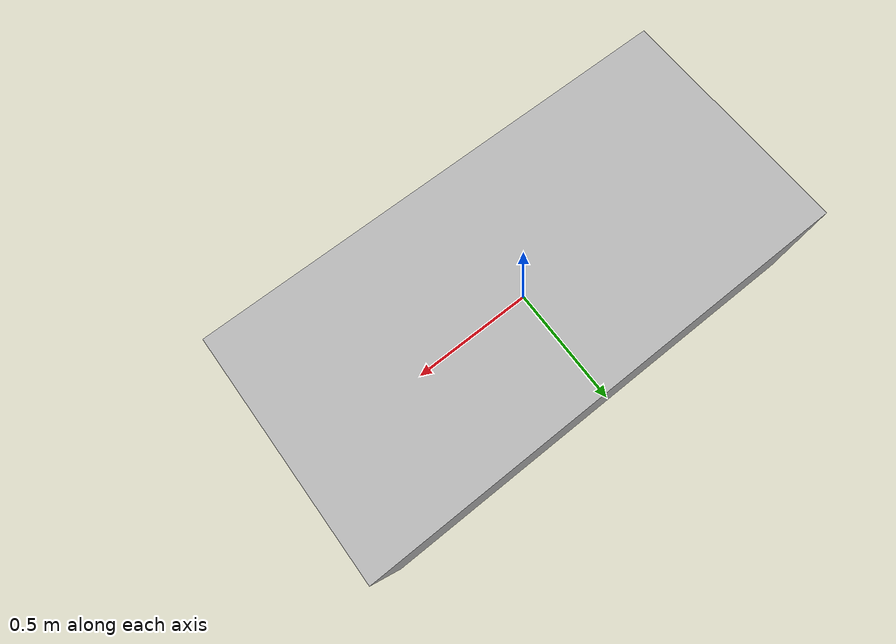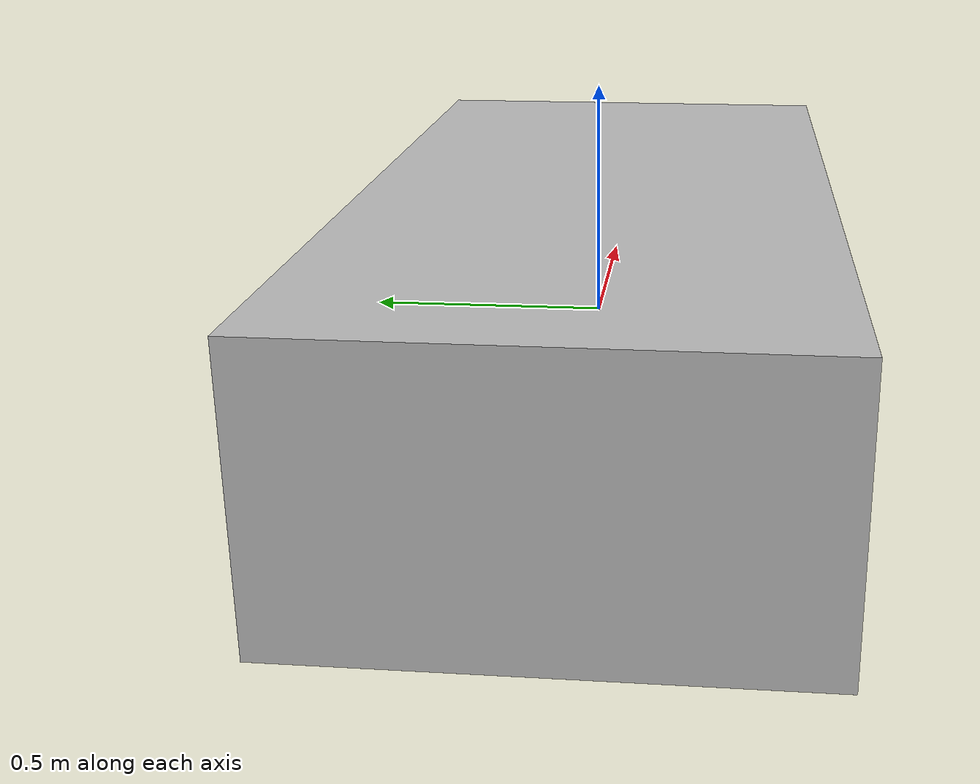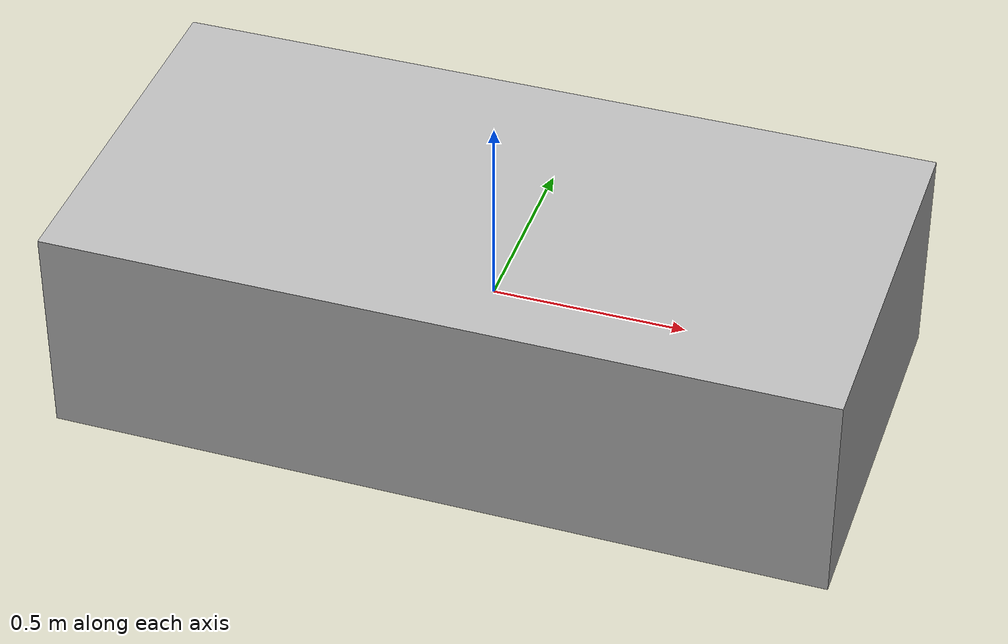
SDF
<?xml version="1.0" ?>
<sdf version="1.6">
  <world name="model_plugin_only">
    <plugin
      filename="gz-sim-apply-link-wrench-system"
      name="gz::sim::systems::ApplyLinkWrench">
    </plugin>

    <light type="directional" name="sun">
    </light>

    <model name='box'>
      <link name='link'>
        <inertial>
          <mass>1.14395</mass>
          <inertia>
            <ixx>0.126164</ixx>
            <iyy>0.416519</iyy>
            <izz>0.481014</izz>
          </inertia>
        </inertial>
        <visual name='visual'>
          <geometry>
            <box>
              <size>2.01142 1 0.568726</size>
            </box>
          </geometry>
        </visual>
        <collision name='collision'>
          <geometry>
            <box>
              <size>2.01142 1 0.568726</size>
            </box>
          </geometry>
        </collision>
      </link>

      <plugin
        filename="gz-sim-velocity-control-system"
        name="gz::sim::systems::VelocityControl">
        <initial_linear>0.3 0 0</initial_linear>
        <initial_angular>0 0 -0.1</initial_angular>
      </plugin>

    </model>

  </world>
</sdf>
